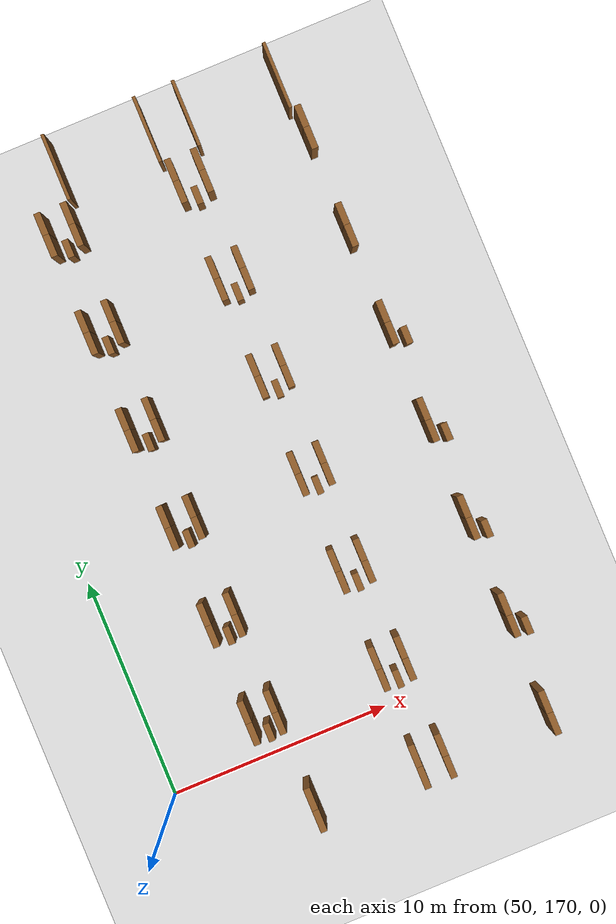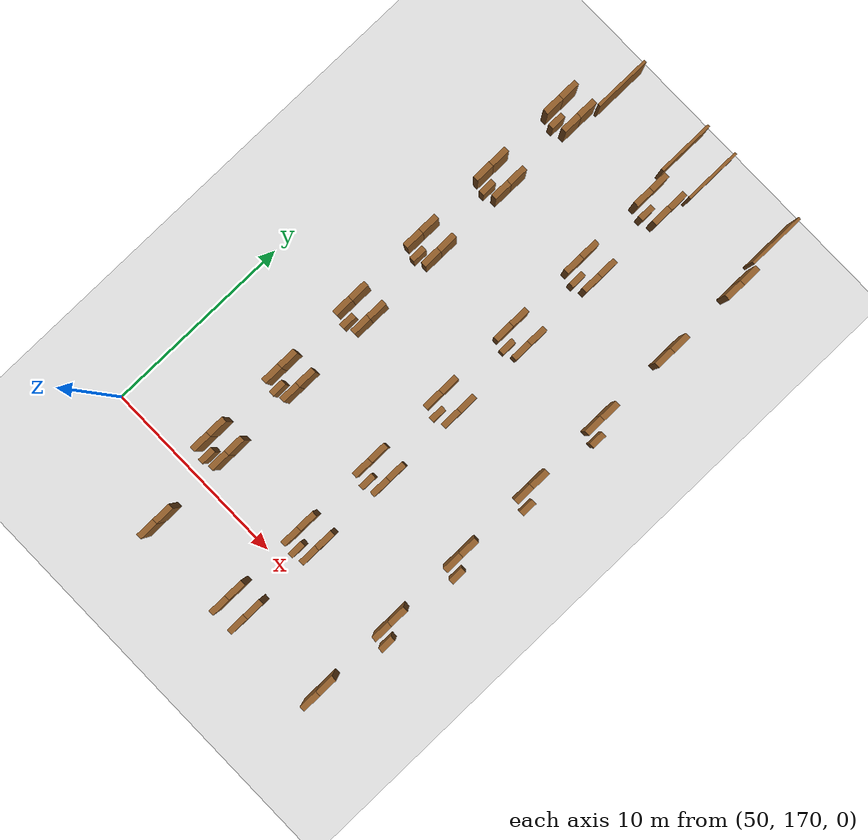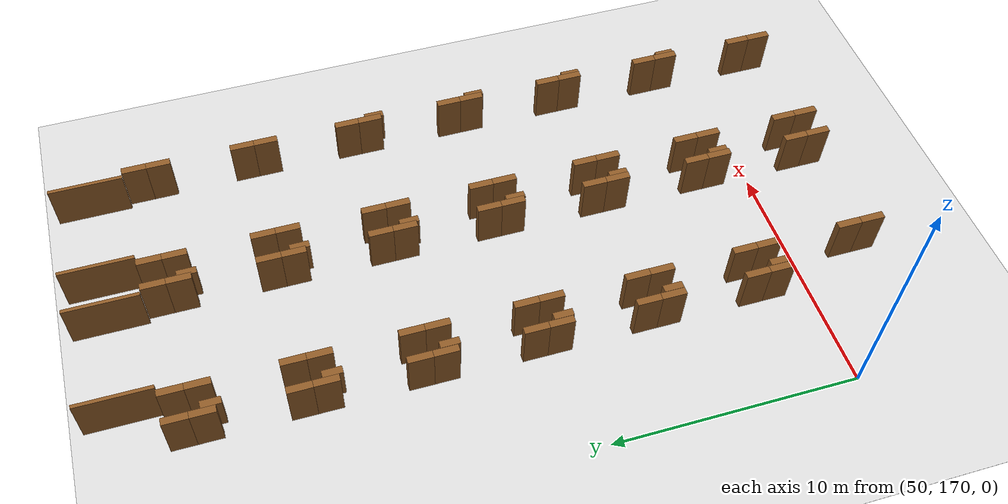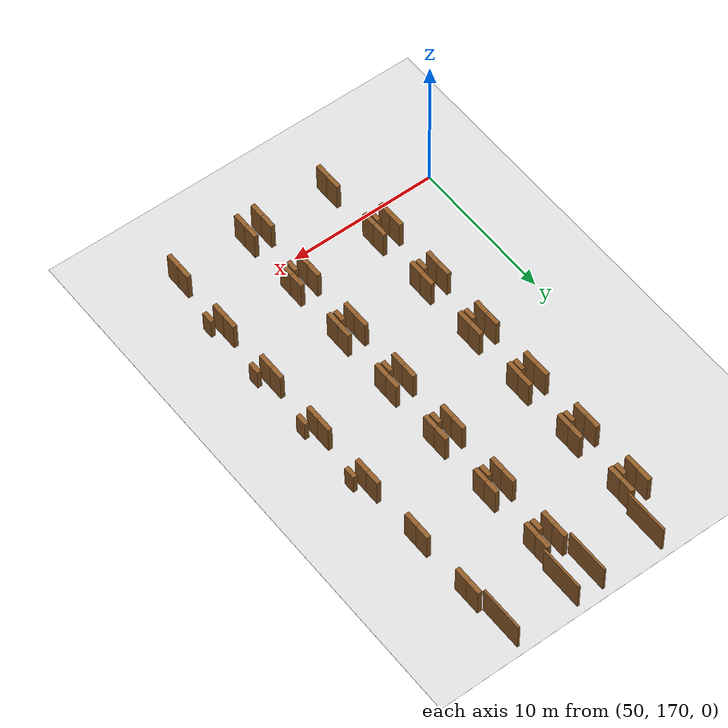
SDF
<sdf version="1.9">
 <world name="realistic_warehouse_150x200m">
  <model name="ground_plane">
   <static>true</static>
   <pose>68.5 102.0 0 0 0 0</pose>
   <link name="ground_link">
    <visual name="ground_visual">
     <geometry><box><size>127.0 194.0 0.01</size></box></geometry>
     <material><ambient>0.85 0.85 0.85 1.0</ambient><diffuse>0.85 0.85 0.85 1.0</diffuse></material>
    </visual>
    <collision name="ground_visual_collision">
     <geometry><box><size>127.0 194.0 0.01</size></box></geometry>
    </collision>
    <collision name="ground_collision">
     <geometry><plane><normal>0 0 1</normal><size>127.0 194.0</size></plane></geometry>
    </collision>
   </link>
  </model>
  <model name="rack_Zone_B_A0_S1_240">
   <static>true</static>
   <pose>55.6 167.0 1.0 0 0 0</pose>
   <link name="rack_Zone_B_A0_S1_240_link">
    <visual name="rack_Zone_B_A0_S1_240_vis">
     <geometry><box><size>0.3 1.0 2.0</size></box></geometry>
     <material><ambient>0.55 0.35 0.15 1.0</ambient><diffuse>0.55 0.35 0.15 1.0</diffuse></material>
    </visual>
    <collision name="rack_Zone_B_A0_S1_240_vis_collision">
     <geometry><box><size>0.3 1.0 2.0</size></box></geometry>
    </collision>
   </link>
  </model>
  <model name="rack_Zone_B_A0_S1_241">
   <static>true</static>
   <pose>55.6 168.0 1.0 0 0 0</pose>
   <link name="rack_Zone_B_A0_S1_241_link">
    <visual name="rack_Zone_B_A0_S1_241_vis">
     <geometry><box><size>0.3 1.0 2.0</size></box></geometry>
     <material><ambient>0.55 0.35 0.15 1.0</ambient><diffuse>0.55 0.35 0.15 1.0</diffuse></material>
    </visual>
    <collision name="rack_Zone_B_A0_S1_241_vis_collision">
     <geometry><box><size>0.3 1.0 2.0</size></box></geometry>
    </collision>
   </link>
  </model>
  <model name="rack_Zone_B_A0_S2_243">
   <static>true</static>
   <pose>54.4 171.5 1.0 0 0 0</pose>
   <link name="rack_Zone_B_A0_S2_243_link">
    <visual name="rack_Zone_B_A0_S2_243_vis">
     <geometry><box><size>0.3 1.0 2.0</size></box></geometry>
     <material><ambient>0.55 0.35 0.15 1.0</ambient><diffuse>0.55 0.35 0.15 1.0</diffuse></material>
    </visual>
    <collision name="rack_Zone_B_A0_S2_243_vis_collision">
     <geometry><box><size>0.3 1.0 2.0</size></box></geometry>
    </collision>
   </link>
  </model>
  <model name="rack_Zone_B_A0_S2_244">
   <static>true</static>
   <pose>54.4 172.5 1.0 0 0 0</pose>
   <link name="rack_Zone_B_A0_S2_244_link">
    <visual name="rack_Zone_B_A0_S2_244_vis">
     <geometry><box><size>0.3 1.0 2.0</size></box></geometry>
     <material><ambient>0.55 0.35 0.15 1.0</ambient><diffuse>0.55 0.35 0.15 1.0</diffuse></material>
    </visual>
    <collision name="rack_Zone_B_A0_S2_244_vis_collision">
     <geometry><box><size>0.3 1.0 2.0</size></box></geometry>
    </collision>
   </link>
  </model>
  <model name="rack_Zone_B_A0_S2_245">
   <static>true</static>
   <pose>55.6 171.5 1.0 0 0 0</pose>
   <link name="rack_Zone_B_A0_S2_245_link">
    <visual name="rack_Zone_B_A0_S2_245_vis">
     <geometry><box><size>0.3 1.0 2.0</size></box></geometry>
     <material><ambient>0.55 0.35 0.15 1.0</ambient><diffuse>0.55 0.35 0.15 1.0</diffuse></material>
    </visual>
    <collision name="rack_Zone_B_A0_S2_245_vis_collision">
     <geometry><box><size>0.3 1.0 2.0</size></box></geometry>
    </collision>
   </link>
  </model>
  <model name="rack_Zone_B_A0_S2_246">
   <static>true</static>
   <pose>55.6 172.5 1.0 0 0 0</pose>
   <link name="rack_Zone_B_A0_S2_246_link">
    <visual name="rack_Zone_B_A0_S2_246_vis">
     <geometry><box><size>0.3 1.0 2.0</size></box></geometry>
     <material><ambient>0.55 0.35 0.15 1.0</ambient><diffuse>0.55 0.35 0.15 1.0</diffuse></material>
    </visual>
    <collision name="rack_Zone_B_A0_S2_246_vis_collision">
     <geometry><box><size>0.3 1.0 2.0</size></box></geometry>
    </collision>
   </link>
  </model>
  <model name="rack_Zone_B_A0_S2_247">
   <static>true</static>
   <pose>55.0 171.2 0.75 0 0 0</pose>
   <link name="rack_Zone_B_A0_S2_247_link">
    <visual name="rack_Zone_B_A0_S2_247_vis">
     <geometry><box><size>0.3 0.8 1.5</size></box></geometry>
     <material><ambient>0.55 0.35 0.15 1.0</ambient><diffuse>0.55 0.35 0.15 1.0</diffuse></material>
    </visual>
    <collision name="rack_Zone_B_A0_S2_247_vis_collision">
     <geometry><box><size>0.3 0.8 1.5</size></box></geometry>
    </collision>
   </link>
  </model>
  <model name="rack_Zone_B_A0_S3_248">
   <static>true</static>
   <pose>54.4 176.0 1.0 0 0 0</pose>
   <link name="rack_Zone_B_A0_S3_248_link">
    <visual name="rack_Zone_B_A0_S3_248_vis">
     <geometry><box><size>0.3 1.0 2.0</size></box></geometry>
     <material><ambient>0.55 0.35 0.15 1.0</ambient><diffuse>0.55 0.35 0.15 1.0</diffuse></material>
    </visual>
    <collision name="rack_Zone_B_A0_S3_248_vis_collision">
     <geometry><box><size>0.3 1.0 2.0</size></box></geometry>
    </collision>
   </link>
  </model>
  <model name="rack_Zone_B_A0_S3_249">
   <static>true</static>
   <pose>54.4 177.0 1.0 0 0 0</pose>
   <link name="rack_Zone_B_A0_S3_249_link">
    <visual name="rack_Zone_B_A0_S3_249_vis">
     <geometry><box><size>0.3 1.0 2.0</size></box></geometry>
     <material><ambient>0.55 0.35 0.15 1.0</ambient><diffuse>0.55 0.35 0.15 1.0</diffuse></material>
    </visual>
    <collision name="rack_Zone_B_A0_S3_249_vis_collision">
     <geometry><box><size>0.3 1.0 2.0</size></box></geometry>
    </collision>
   </link>
  </model>
  <model name="rack_Zone_B_A0_S3_250">
   <static>true</static>
   <pose>55.6 176.0 1.0 0 0 0</pose>
   <link name="rack_Zone_B_A0_S3_250_link">
    <visual name="rack_Zone_B_A0_S3_250_vis">
     <geometry><box><size>0.3 1.0 2.0</size></box></geometry>
     <material><ambient>0.55 0.35 0.15 1.0</ambient><diffuse>0.55 0.35 0.15 1.0</diffuse></material>
    </visual>
    <collision name="rack_Zone_B_A0_S3_250_vis_collision">
     <geometry><box><size>0.3 1.0 2.0</size></box></geometry>
    </collision>
   </link>
  </model>
  <model name="rack_Zone_B_A0_S3_251">
   <static>true</static>
   <pose>55.6 177.0 1.0 0 0 0</pose>
   <link name="rack_Zone_B_A0_S3_251_link">
    <visual name="rack_Zone_B_A0_S3_251_vis">
     <geometry><box><size>0.3 1.0 2.0</size></box></geometry>
     <material><ambient>0.55 0.35 0.15 1.0</ambient><diffuse>0.55 0.35 0.15 1.0</diffuse></material>
    </visual>
    <collision name="rack_Zone_B_A0_S3_251_vis_collision">
     <geometry><box><size>0.3 1.0 2.0</size></box></geometry>
    </collision>
   </link>
  </model>
  <model name="rack_Zone_B_A0_S3_252">
   <static>true</static>
   <pose>55.0 175.7 0.75 0 0 0</pose>
   <link name="rack_Zone_B_A0_S3_252_link">
    <visual name="rack_Zone_B_A0_S3_252_vis">
     <geometry><box><size>0.3 0.8 1.5</size></box></geometry>
     <material><ambient>0.55 0.35 0.15 1.0</ambient><diffuse>0.55 0.35 0.15 1.0</diffuse></material>
    </visual>
    <collision name="rack_Zone_B_A0_S3_252_vis_collision">
     <geometry><box><size>0.3 0.8 1.5</size></box></geometry>
    </collision>
   </link>
  </model>
  <model name="rack_Zone_B_A0_S4_253">
   <static>true</static>
   <pose>54.4 180.5 1.0 0 0 0</pose>
   <link name="rack_Zone_B_A0_S4_253_link">
    <visual name="rack_Zone_B_A0_S4_253_vis">
     <geometry><box><size>0.3 1.0 2.0</size></box></geometry>
     <material><ambient>0.55 0.35 0.15 1.0</ambient><diffuse>0.55 0.35 0.15 1.0</diffuse></material>
    </visual>
    <collision name="rack_Zone_B_A0_S4_253_vis_collision">
     <geometry><box><size>0.3 1.0 2.0</size></box></geometry>
    </collision>
   </link>
  </model>
  <model name="rack_Zone_B_A0_S4_254">
   <static>true</static>
   <pose>54.4 181.5 1.0 0 0 0</pose>
   <link name="rack_Zone_B_A0_S4_254_link">
    <visual name="rack_Zone_B_A0_S4_254_vis">
     <geometry><box><size>0.3 1.0 2.0</size></box></geometry>
     <material><ambient>0.55 0.35 0.15 1.0</ambient><diffuse>0.55 0.35 0.15 1.0</diffuse></material>
    </visual>
    <collision name="rack_Zone_B_A0_S4_254_vis_collision">
     <geometry><box><size>0.3 1.0 2.0</size></box></geometry>
    </collision>
   </link>
  </model>
  <model name="rack_Zone_B_A0_S4_255">
   <static>true</static>
   <pose>55.6 180.5 1.0 0 0 0</pose>
   <link name="rack_Zone_B_A0_S4_255_link">
    <visual name="rack_Zone_B_A0_S4_255_vis">
     <geometry><box><size>0.3 1.0 2.0</size></box></geometry>
     <material><ambient>0.55 0.35 0.15 1.0</ambient><diffuse>0.55 0.35 0.15 1.0</diffuse></material>
    </visual>
    <collision name="rack_Zone_B_A0_S4_255_vis_collision">
     <geometry><box><size>0.3 1.0 2.0</size></box></geometry>
    </collision>
   </link>
  </model>
  <model name="rack_Zone_B_A0_S4_256">
   <static>true</static>
   <pose>55.6 181.5 1.0 0 0 0</pose>
   <link name="rack_Zone_B_A0_S4_256_link">
    <visual name="rack_Zone_B_A0_S4_256_vis">
     <geometry><box><size>0.3 1.0 2.0</size></box></geometry>
     <material><ambient>0.55 0.35 0.15 1.0</ambient><diffuse>0.55 0.35 0.15 1.0</diffuse></material>
    </visual>
    <collision name="rack_Zone_B_A0_S4_256_vis_collision">
     <geometry><box><size>0.3 1.0 2.0</size></box></geometry>
    </collision>
   </link>
  </model>
  <model name="rack_Zone_B_A0_S4_257">
   <static>true</static>
   <pose>55.0 180.2 0.75 0 0 0</pose>
   <link name="rack_Zone_B_A0_S4_257_link">
    <visual name="rack_Zone_B_A0_S4_257_vis">
     <geometry><box><size>0.3 0.8 1.5</size></box></geometry>
     <material><ambient>0.55 0.35 0.15 1.0</ambient><diffuse>0.55 0.35 0.15 1.0</diffuse></material>
    </visual>
    <collision name="rack_Zone_B_A0_S4_257_vis_collision">
     <geometry><box><size>0.3 0.8 1.5</size></box></geometry>
    </collision>
   </link>
  </model>
  <model name="rack_Zone_B_A0_S5_258">
   <static>true</static>
   <pose>54.4 185.0 1.0 0 0 0</pose>
   <link name="rack_Zone_B_A0_S5_258_link">
    <visual name="rack_Zone_B_A0_S5_258_vis">
     <geometry><box><size>0.3 1.0 2.0</size></box></geometry>
     <material><ambient>0.55 0.35 0.15 1.0</ambient><diffuse>0.55 0.35 0.15 1.0</diffuse></material>
    </visual>
    <collision name="rack_Zone_B_A0_S5_258_vis_collision">
     <geometry><box><size>0.3 1.0 2.0</size></box></geometry>
    </collision>
   </link>
  </model>
  <model name="rack_Zone_B_A0_S5_259">
   <static>true</static>
   <pose>54.4 186.0 1.0 0 0 0</pose>
   <link name="rack_Zone_B_A0_S5_259_link">
    <visual name="rack_Zone_B_A0_S5_259_vis">
     <geometry><box><size>0.3 1.0 2.0</size></box></geometry>
     <material><ambient>0.55 0.35 0.15 1.0</ambient><diffuse>0.55 0.35 0.15 1.0</diffuse></material>
    </visual>
    <collision name="rack_Zone_B_A0_S5_259_vis_collision">
     <geometry><box><size>0.3 1.0 2.0</size></box></geometry>
    </collision>
   </link>
  </model>
  <model name="rack_Zone_B_A0_S5_260">
   <static>true</static>
   <pose>55.6 185.0 1.0 0 0 0</pose>
   <link name="rack_Zone_B_A0_S5_260_link">
    <visual name="rack_Zone_B_A0_S5_260_vis">
     <geometry><box><size>0.3 1.0 2.0</size></box></geometry>
     <material><ambient>0.55 0.35 0.15 1.0</ambient><diffuse>0.55 0.35 0.15 1.0</diffuse></material>
    </visual>
    <collision name="rack_Zone_B_A0_S5_260_vis_collision">
     <geometry><box><size>0.3 1.0 2.0</size></box></geometry>
    </collision>
   </link>
  </model>
  <model name="rack_Zone_B_A0_S5_261">
   <static>true</static>
   <pose>55.6 186.0 1.0 0 0 0</pose>
   <link name="rack_Zone_B_A0_S5_261_link">
    <visual name="rack_Zone_B_A0_S5_261_vis">
     <geometry><box><size>0.3 1.0 2.0</size></box></geometry>
     <material><ambient>0.55 0.35 0.15 1.0</ambient><diffuse>0.55 0.35 0.15 1.0</diffuse></material>
    </visual>
    <collision name="rack_Zone_B_A0_S5_261_vis_collision">
     <geometry><box><size>0.3 1.0 2.0</size></box></geometry>
    </collision>
   </link>
  </model>
  <model name="rack_Zone_B_A0_S5_262">
   <static>true</static>
   <pose>55.0 184.7 0.75 0 0 0</pose>
   <link name="rack_Zone_B_A0_S5_262_link">
    <visual name="rack_Zone_B_A0_S5_262_vis">
     <geometry><box><size>0.3 0.8 1.5</size></box></geometry>
     <material><ambient>0.55 0.35 0.15 1.0</ambient><diffuse>0.55 0.35 0.15 1.0</diffuse></material>
    </visual>
    <collision name="rack_Zone_B_A0_S5_262_vis_collision">
     <geometry><box><size>0.3 0.8 1.5</size></box></geometry>
    </collision>
   </link>
  </model>
  <model name="rack_Zone_B_A0_S6_263">
   <static>true</static>
   <pose>54.4 189.5 1.0 0 0 0</pose>
   <link name="rack_Zone_B_A0_S6_263_link">
    <visual name="rack_Zone_B_A0_S6_263_vis">
     <geometry><box><size>0.3 1.0 2.0</size></box></geometry>
     <material><ambient>0.55 0.35 0.15 1.0</ambient><diffuse>0.55 0.35 0.15 1.0</diffuse></material>
    </visual>
    <collision name="rack_Zone_B_A0_S6_263_vis_collision">
     <geometry><box><size>0.3 1.0 2.0</size></box></geometry>
    </collision>
   </link>
  </model>
  <model name="rack_Zone_B_A0_S6_264">
   <static>true</static>
   <pose>54.4 190.5 1.0 0 0 0</pose>
   <link name="rack_Zone_B_A0_S6_264_link">
    <visual name="rack_Zone_B_A0_S6_264_vis">
     <geometry><box><size>0.3 1.0 2.0</size></box></geometry>
     <material><ambient>0.55 0.35 0.15 1.0</ambient><diffuse>0.55 0.35 0.15 1.0</diffuse></material>
    </visual>
    <collision name="rack_Zone_B_A0_S6_264_vis_collision">
     <geometry><box><size>0.3 1.0 2.0</size></box></geometry>
    </collision>
   </link>
  </model>
  <model name="rack_Zone_B_A0_S6_265">
   <static>true</static>
   <pose>55.6 189.5 1.0 0 0 0</pose>
   <link name="rack_Zone_B_A0_S6_265_link">
    <visual name="rack_Zone_B_A0_S6_265_vis">
     <geometry><box><size>0.3 1.0 2.0</size></box></geometry>
     <material><ambient>0.55 0.35 0.15 1.0</ambient><diffuse>0.55 0.35 0.15 1.0</diffuse></material>
    </visual>
    <collision name="rack_Zone_B_A0_S6_265_vis_collision">
     <geometry><box><size>0.3 1.0 2.0</size></box></geometry>
    </collision>
   </link>
  </model>
  <model name="rack_Zone_B_A0_S6_266">
   <static>true</static>
   <pose>55.6 190.5 1.0 0 0 0</pose>
   <link name="rack_Zone_B_A0_S6_266_link">
    <visual name="rack_Zone_B_A0_S6_266_vis">
     <geometry><box><size>0.3 1.0 2.0</size></box></geometry>
     <material><ambient>0.55 0.35 0.15 1.0</ambient><diffuse>0.55 0.35 0.15 1.0</diffuse></material>
    </visual>
    <collision name="rack_Zone_B_A0_S6_266_vis_collision">
     <geometry><box><size>0.3 1.0 2.0</size></box></geometry>
    </collision>
   </link>
  </model>
  <model name="rack_Zone_B_A0_S6_267">
   <static>true</static>
   <pose>55.0 189.2 0.75 0 0 0</pose>
   <link name="rack_Zone_B_A0_S6_267_link">
    <visual name="rack_Zone_B_A0_S6_267_vis">
     <geometry><box><size>0.3 0.8 1.5</size></box></geometry>
     <material><ambient>0.55 0.35 0.15 1.0</ambient><diffuse>0.55 0.35 0.15 1.0</diffuse></material>
    </visual>
    <collision name="rack_Zone_B_A0_S6_267_vis_collision">
     <geometry><box><size>0.3 0.8 1.5</size></box></geometry>
    </collision>
   </link>
  </model>
  <model name="rack_Zone_B_A0_S7_268">
   <static>true</static>
   <pose>54.4 194.0 1.0 0 0 0</pose>
   <link name="rack_Zone_B_A0_S7_268_link">
    <visual name="rack_Zone_B_A0_S7_268_vis">
     <geometry><box><size>0.3 1.0 2.0</size></box></geometry>
     <material><ambient>0.55 0.35 0.15 1.0</ambient><diffuse>0.55 0.35 0.15 1.0</diffuse></material>
    </visual>
    <collision name="rack_Zone_B_A0_S7_268_vis_collision">
     <geometry><box><size>0.3 1.0 2.0</size></box></geometry>
    </collision>
   </link>
  </model>
  <model name="rack_Zone_B_A0_S7_269">
   <static>true</static>
   <pose>54.4 195.0 1.0 0 0 0</pose>
   <link name="rack_Zone_B_A0_S7_269_link">
    <visual name="rack_Zone_B_A0_S7_269_vis">
     <geometry><box><size>0.3 1.0 2.0</size></box></geometry>
     <material><ambient>0.55 0.35 0.15 1.0</ambient><diffuse>0.55 0.35 0.15 1.0</diffuse></material>
    </visual>
    <collision name="rack_Zone_B_A0_S7_269_vis_collision">
     <geometry><box><size>0.3 1.0 2.0</size></box></geometry>
    </collision>
   </link>
  </model>
  <model name="rack_Zone_B_A0_S7_270">
   <static>true</static>
   <pose>55.6 194.0 1.0 0 0 0</pose>
   <link name="rack_Zone_B_A0_S7_270_link">
    <visual name="rack_Zone_B_A0_S7_270_vis">
     <geometry><box><size>0.3 1.0 2.0</size></box></geometry>
     <material><ambient>0.55 0.35 0.15 1.0</ambient><diffuse>0.55 0.35 0.15 1.0</diffuse></material>
    </visual>
    <collision name="rack_Zone_B_A0_S7_270_vis_collision">
     <geometry><box><size>0.3 1.0 2.0</size></box></geometry>
    </collision>
   </link>
  </model>
  <model name="rack_Zone_B_A0_S7_271">
   <static>true</static>
   <pose>55.6 195.0 1.0 0 0 0</pose>
   <link name="rack_Zone_B_A0_S7_271_link">
    <visual name="rack_Zone_B_A0_S7_271_vis">
     <geometry><box><size>0.3 1.0 2.0</size></box></geometry>
     <material><ambient>0.55 0.35 0.15 1.0</ambient><diffuse>0.55 0.35 0.15 1.0</diffuse></material>
    </visual>
    <collision name="rack_Zone_B_A0_S7_271_vis_collision">
     <geometry><box><size>0.3 1.0 2.0</size></box></geometry>
    </collision>
   </link>
  </model>
  <model name="rack_Zone_B_A0_S7_272">
   <static>true</static>
   <pose>55.0 193.7 0.75 0 0 0</pose>
   <link name="rack_Zone_B_A0_S7_272_link">
    <visual name="rack_Zone_B_A0_S7_272_vis">
     <geometry><box><size>0.3 0.8 1.5</size></box></geometry>
     <material><ambient>0.55 0.35 0.15 1.0</ambient><diffuse>0.55 0.35 0.15 1.0</diffuse></material>
    </visual>
    <collision name="rack_Zone_B_A0_S7_272_vis_collision">
     <geometry><box><size>0.3 0.8 1.5</size></box></geometry>
    </collision>
   </link>
  </model>
  <model name="aisle_R_Zone_B_A0_exit_274">
   <static>true</static>
   <pose>55.9 197.0 1.0 0 0 0</pose>
   <link name="aisle_R_Zone_B_A0_exit_274_link">
    <visual name="aisle_R_Zone_B_A0_exit_274_vis">
     <geometry><box><size>0.15 3.0 2.0</size></box></geometry>
     <material><ambient>0.55 0.35 0.15 1.0</ambient><diffuse>0.55 0.35 0.15 1.0</diffuse></material>
    </visual>
    <collision name="aisle_R_Zone_B_A0_exit_274_vis_collision">
     <geometry><box><size>0.15 3.0 2.0</size></box></geometry>
    </collision>
   </link>
  </model>
  <model name="rack_Zone_B_A1_S1_282">
   <static>true</static>
   <pose>60.4 167.0 1.0 0 0 0</pose>
   <link name="rack_Zone_B_A1_S1_282_link">
    <visual name="rack_Zone_B_A1_S1_282_vis">
     <geometry><box><size>0.3 1.0 2.0</size></box></geometry>
     <material><ambient>0.55 0.35 0.15 1.0</ambient><diffuse>0.55 0.35 0.15 1.0</diffuse></material>
    </visual>
    <collision name="rack_Zone_B_A1_S1_282_vis_collision">
     <geometry><box><size>0.3 1.0 2.0</size></box></geometry>
    </collision>
   </link>
  </model>
  <model name="rack_Zone_B_A1_S1_283">
   <static>true</static>
   <pose>60.4 168.0 1.0 0 0 0</pose>
   <link name="rack_Zone_B_A1_S1_283_link">
    <visual name="rack_Zone_B_A1_S1_283_vis">
     <geometry><box><size>0.3 1.0 2.0</size></box></geometry>
     <material><ambient>0.55 0.35 0.15 1.0</ambient><diffuse>0.55 0.35 0.15 1.0</diffuse></material>
    </visual>
    <collision name="rack_Zone_B_A1_S1_283_vis_collision">
     <geometry><box><size>0.3 1.0 2.0</size></box></geometry>
    </collision>
   </link>
  </model>
  <model name="rack_Zone_B_A1_S1_284">
   <static>true</static>
   <pose>61.6 167.0 1.0 0 0 0</pose>
   <link name="rack_Zone_B_A1_S1_284_link">
    <visual name="rack_Zone_B_A1_S1_284_vis">
     <geometry><box><size>0.3 1.0 2.0</size></box></geometry>
     <material><ambient>0.55 0.35 0.15 1.0</ambient><diffuse>0.55 0.35 0.15 1.0</diffuse></material>
    </visual>
    <collision name="rack_Zone_B_A1_S1_284_vis_collision">
     <geometry><box><size>0.3 1.0 2.0</size></box></geometry>
    </collision>
   </link>
  </model>
  <model name="rack_Zone_B_A1_S1_285">
   <static>true</static>
   <pose>61.6 168.0 1.0 0 0 0</pose>
   <link name="rack_Zone_B_A1_S1_285_link">
    <visual name="rack_Zone_B_A1_S1_285_vis">
     <geometry><box><size>0.3 1.0 2.0</size></box></geometry>
     <material><ambient>0.55 0.35 0.15 1.0</ambient><diffuse>0.55 0.35 0.15 1.0</diffuse></material>
    </visual>
    <collision name="rack_Zone_B_A1_S1_285_vis_collision">
     <geometry><box><size>0.3 1.0 2.0</size></box></geometry>
    </collision>
   </link>
  </model>
  <model name="rack_Zone_B_A1_S2_287">
   <static>true</static>
   <pose>60.4 171.5 1.0 0 0 0</pose>
   <link name="rack_Zone_B_A1_S2_287_link">
    <visual name="rack_Zone_B_A1_S2_287_vis">
     <geometry><box><size>0.3 1.0 2.0</size></box></geometry>
     <material><ambient>0.55 0.35 0.15 1.0</ambient><diffuse>0.55 0.35 0.15 1.0</diffuse></material>
    </visual>
    <collision name="rack_Zone_B_A1_S2_287_vis_collision">
     <geometry><box><size>0.3 1.0 2.0</size></box></geometry>
    </collision>
   </link>
  </model>
  <model name="rack_Zone_B_A1_S2_288">
   <static>true</static>
   <pose>60.4 172.5 1.0 0 0 0</pose>
   <link name="rack_Zone_B_A1_S2_288_link">
    <visual name="rack_Zone_B_A1_S2_288_vis">
     <geometry><box><size>0.3 1.0 2.0</size></box></geometry>
     <material><ambient>0.55 0.35 0.15 1.0</ambient><diffuse>0.55 0.35 0.15 1.0</diffuse></material>
    </visual>
    <collision name="rack_Zone_B_A1_S2_288_vis_collision">
     <geometry><box><size>0.3 1.0 2.0</size></box></geometry>
    </collision>
   </link>
  </model>
  <model name="rack_Zone_B_A1_S2_289">
   <static>true</static>
   <pose>61.6 171.5 1.0 0 0 0</pose>
   <link name="rack_Zone_B_A1_S2_289_link">
    <visual name="rack_Zone_B_A1_S2_289_vis">
     <geometry><box><size>0.3 1.0 2.0</size></box></geometry>
     <material><ambient>0.55 0.35 0.15 1.0</ambient><diffuse>0.55 0.35 0.15 1.0</diffuse></material>
    </visual>
    <collision name="rack_Zone_B_A1_S2_289_vis_collision">
     <geometry><box><size>0.3 1.0 2.0</size></box></geometry>
    </collision>
   </link>
  </model>
  <model name="rack_Zone_B_A1_S2_290">
   <static>true</static>
   <pose>61.6 172.5 1.0 0 0 0</pose>
   <link name="rack_Zone_B_A1_S2_290_link">
    <visual name="rack_Zone_B_A1_S2_290_vis">
     <geometry><box><size>0.3 1.0 2.0</size></box></geometry>
     <material><ambient>0.55 0.35 0.15 1.0</ambient><diffuse>0.55 0.35 0.15 1.0</diffuse></material>
    </visual>
    <collision name="rack_Zone_B_A1_S2_290_vis_collision">
     <geometry><box><size>0.3 1.0 2.0</size></box></geometry>
    </collision>
   </link>
  </model>
  <model name="rack_Zone_B_A1_S2_291">
   <static>true</static>
   <pose>61.0 171.2 0.75 0 0 0</pose>
   <link name="rack_Zone_B_A1_S2_291_link">
    <visual name="rack_Zone_B_A1_S2_291_vis">
     <geometry><box><size>0.3 0.8 1.5</size></box></geometry>
     <material><ambient>0.55 0.35 0.15 1.0</ambient><diffuse>0.55 0.35 0.15 1.0</diffuse></material>
    </visual>
    <collision name="rack_Zone_B_A1_S2_291_vis_collision">
     <geometry><box><size>0.3 0.8 1.5</size></box></geometry>
    </collision>
   </link>
  </model>
  <model name="rack_Zone_B_A1_S3_292">
   <static>true</static>
   <pose>60.4 176.0 1.0 0 0 0</pose>
   <link name="rack_Zone_B_A1_S3_292_link">
    <visual name="rack_Zone_B_A1_S3_292_vis">
     <geometry><box><size>0.3 1.0 2.0</size></box></geometry>
     <material><ambient>0.55 0.35 0.15 1.0</ambient><diffuse>0.55 0.35 0.15 1.0</diffuse></material>
    </visual>
    <collision name="rack_Zone_B_A1_S3_292_vis_collision">
     <geometry><box><size>0.3 1.0 2.0</size></box></geometry>
    </collision>
   </link>
  </model>
  <model name="rack_Zone_B_A1_S3_293">
   <static>true</static>
   <pose>60.4 177.0 1.0 0 0 0</pose>
   <link name="rack_Zone_B_A1_S3_293_link">
    <visual name="rack_Zone_B_A1_S3_293_vis">
     <geometry><box><size>0.3 1.0 2.0</size></box></geometry>
     <material><ambient>0.55 0.35 0.15 1.0</ambient><diffuse>0.55 0.35 0.15 1.0</diffuse></material>
    </visual>
    <collision name="rack_Zone_B_A1_S3_293_vis_collision">
     <geometry><box><size>0.3 1.0 2.0</size></box></geometry>
    </collision>
   </link>
  </model>
  <model name="rack_Zone_B_A1_S3_294">
   <static>true</static>
   <pose>61.6 176.0 1.0 0 0 0</pose>
   <link name="rack_Zone_B_A1_S3_294_link">
    <visual name="rack_Zone_B_A1_S3_294_vis">
     <geometry><box><size>0.3 1.0 2.0</size></box></geometry>
     <material><ambient>0.55 0.35 0.15 1.0</ambient><diffuse>0.55 0.35 0.15 1.0</diffuse></material>
    </visual>
    <collision name="rack_Zone_B_A1_S3_294_vis_collision">
     <geometry><box><size>0.3 1.0 2.0</size></box></geometry>
    </collision>
   </link>
  </model>
  <model name="rack_Zone_B_A1_S3_295">
   <static>true</static>
   <pose>61.6 177.0 1.0 0 0 0</pose>
   <link name="rack_Zone_B_A1_S3_295_link">
    <visual name="rack_Zone_B_A1_S3_295_vis">
     <geometry><box><size>0.3 1.0 2.0</size></box></geometry>
     <material><ambient>0.55 0.35 0.15 1.0</ambient><diffuse>0.55 0.35 0.15 1.0</diffuse></material>
    </visual>
    <collision name="rack_Zone_B_A1_S3_295_vis_collision">
     <geometry><box><size>0.3 1.0 2.0</size></box></geometry>
    </collision>
   </link>
  </model>
  <model name="rack_Zone_B_A1_S3_296">
   <static>true</static>
   <pose>61.0 175.7 0.75 0 0 0</pose>
   <link name="rack_Zone_B_A1_S3_296_link">
    <visual name="rack_Zone_B_A1_S3_296_vis">
     <geometry><box><size>0.3 0.8 1.5</size></box></geometry>
     <material><ambient>0.55 0.35 0.15 1.0</ambient><diffuse>0.55 0.35 0.15 1.0</diffuse></material>
    </visual>
    <collision name="rack_Zone_B_A1_S3_296_vis_collision">
     <geometry><box><size>0.3 0.8 1.5</size></box></geometry>
    </collision>
   </link>
  </model>
  <model name="rack_Zone_B_A1_S4_297">
   <static>true</static>
   <pose>60.4 180.5 1.0 0 0 0</pose>
   <link name="rack_Zone_B_A1_S4_297_link">
    <visual name="rack_Zone_B_A1_S4_297_vis">
     <geometry><box><size>0.3 1.0 2.0</size></box></geometry>
     <material><ambient>0.55 0.35 0.15 1.0</ambient><diffuse>0.55 0.35 0.15 1.0</diffuse></material>
    </visual>
    <collision name="rack_Zone_B_A1_S4_297_vis_collision">
     <geometry><box><size>0.3 1.0 2.0</size></box></geometry>
    </collision>
   </link>
  </model>
  <model name="rack_Zone_B_A1_S4_298">
   <static>true</static>
   <pose>60.4 181.5 1.0 0 0 0</pose>
   <link name="rack_Zone_B_A1_S4_298_link">
    <visual name="rack_Zone_B_A1_S4_298_vis">
     <geometry><box><size>0.3 1.0 2.0</size></box></geometry>
     <material><ambient>0.55 0.35 0.15 1.0</ambient><diffuse>0.55 0.35 0.15 1.0</diffuse></material>
    </visual>
    <collision name="rack_Zone_B_A1_S4_298_vis_collision">
     <geometry><box><size>0.3 1.0 2.0</size></box></geometry>
    </collision>
   </link>
  </model>
  <model name="rack_Zone_B_A1_S4_299">
   <static>true</static>
   <pose>61.6 180.5 1.0 0 0 0</pose>
   <link name="rack_Zone_B_A1_S4_299_link">
    <visual name="rack_Zone_B_A1_S4_299_vis">
     <geometry><box><size>0.3 1.0 2.0</size></box></geometry>
     <material><ambient>0.55 0.35 0.15 1.0</ambient><diffuse>0.55 0.35 0.15 1.0</diffuse></material>
    </visual>
    <collision name="rack_Zone_B_A1_S4_299_vis_collision">
     <geometry><box><size>0.3 1.0 2.0</size></box></geometry>
    </collision>
   </link>
  </model>
  <model name="rack_Zone_B_A1_S4_300">
   <static>true</static>
   <pose>61.6 181.5 1.0 0 0 0</pose>
   <link name="rack_Zone_B_A1_S4_300_link">
    <visual name="rack_Zone_B_A1_S4_300_vis">
     <geometry><box><size>0.3 1.0 2.0</size></box></geometry>
     <material><ambient>0.55 0.35 0.15 1.0</ambient><diffuse>0.55 0.35 0.15 1.0</diffuse></material>
    </visual>
    <collision name="rack_Zone_B_A1_S4_300_vis_collision">
     <geometry><box><size>0.3 1.0 2.0</size></box></geometry>
    </collision>
   </link>
  </model>
  <model name="rack_Zone_B_A1_S4_301">
   <static>true</static>
   <pose>61.0 180.2 0.75 0 0 0</pose>
   <link name="rack_Zone_B_A1_S4_301_link">
    <visual name="rack_Zone_B_A1_S4_301_vis">
     <geometry><box><size>0.3 0.8 1.5</size></box></geometry>
     <material><ambient>0.55 0.35 0.15 1.0</ambient><diffuse>0.55 0.35 0.15 1.0</diffuse></material>
    </visual>
    <collision name="rack_Zone_B_A1_S4_301_vis_collision">
     <geometry><box><size>0.3 0.8 1.5</size></box></geometry>
    </collision>
   </link>
  </model>
  <model name="rack_Zone_B_A1_S5_302">
   <static>true</static>
   <pose>60.4 185.0 1.0 0 0 0</pose>
   <link name="rack_Zone_B_A1_S5_302_link">
    <visual name="rack_Zone_B_A1_S5_302_vis">
     <geometry><box><size>0.3 1.0 2.0</size></box></geometry>
     <material><ambient>0.55 0.35 0.15 1.0</ambient><diffuse>0.55 0.35 0.15 1.0</diffuse></material>
    </visual>
    <collision name="rack_Zone_B_A1_S5_302_vis_collision">
     <geometry><box><size>0.3 1.0 2.0</size></box></geometry>
    </collision>
   </link>
  </model>
  <model name="rack_Zone_B_A1_S5_303">
   <static>true</static>
   <pose>60.4 186.0 1.0 0 0 0</pose>
   <link name="rack_Zone_B_A1_S5_303_link">
    <visual name="rack_Zone_B_A1_S5_303_vis">
     <geometry><box><size>0.3 1.0 2.0</size></box></geometry>
     <material><ambient>0.55 0.35 0.15 1.0</ambient><diffuse>0.55 0.35 0.15 1.0</diffuse></material>
    </visual>
    <collision name="rack_Zone_B_A1_S5_303_vis_collision">
     <geometry><box><size>0.3 1.0 2.0</size></box></geometry>
    </collision>
   </link>
  </model>
  <model name="rack_Zone_B_A1_S5_304">
   <static>true</static>
   <pose>61.6 185.0 1.0 0 0 0</pose>
   <link name="rack_Zone_B_A1_S5_304_link">
    <visual name="rack_Zone_B_A1_S5_304_vis">
     <geometry><box><size>0.3 1.0 2.0</size></box></geometry>
     <material><ambient>0.55 0.35 0.15 1.0</ambient><diffuse>0.55 0.35 0.15 1.0</diffuse></material>
    </visual>
    <collision name="rack_Zone_B_A1_S5_304_vis_collision">
     <geometry><box><size>0.3 1.0 2.0</size></box></geometry>
    </collision>
   </link>
  </model>
  <model name="rack_Zone_B_A1_S5_305">
   <static>true</static>
   <pose>61.6 186.0 1.0 0 0 0</pose>
   <link name="rack_Zone_B_A1_S5_305_link">
    <visual name="rack_Zone_B_A1_S5_305_vis">
     <geometry><box><size>0.3 1.0 2.0</size></box></geometry>
     <material><ambient>0.55 0.35 0.15 1.0</ambient><diffuse>0.55 0.35 0.15 1.0</diffuse></material>
    </visual>
    <collision name="rack_Zone_B_A1_S5_305_vis_collision">
     <geometry><box><size>0.3 1.0 2.0</size></box></geometry>
    </collision>
   </link>
  </model>
  <model name="rack_Zone_B_A1_S5_306">
   <static>true</static>
   <pose>61.0 184.7 0.75 0 0 0</pose>
   <link name="rack_Zone_B_A1_S5_306_link">
    <visual name="rack_Zone_B_A1_S5_306_vis">
     <geometry><box><size>0.3 0.8 1.5</size></box></geometry>
     <material><ambient>0.55 0.35 0.15 1.0</ambient><diffuse>0.55 0.35 0.15 1.0</diffuse></material>
    </visual>
    <collision name="rack_Zone_B_A1_S5_306_vis_collision">
     <geometry><box><size>0.3 0.8 1.5</size></box></geometry>
    </collision>
   </link>
  </model>
  <model name="rack_Zone_B_A1_S6_307">
   <static>true</static>
   <pose>60.4 189.5 1.0 0 0 0</pose>
   <link name="rack_Zone_B_A1_S6_307_link">
    <visual name="rack_Zone_B_A1_S6_307_vis">
     <geometry><box><size>0.3 1.0 2.0</size></box></geometry>
     <material><ambient>0.55 0.35 0.15 1.0</ambient><diffuse>0.55 0.35 0.15 1.0</diffuse></material>
    </visual>
    <collision name="rack_Zone_B_A1_S6_307_vis_collision">
     <geometry><box><size>0.3 1.0 2.0</size></box></geometry>
    </collision>
   </link>
  </model>
  <model name="rack_Zone_B_A1_S6_308">
   <static>true</static>
   <pose>60.4 190.5 1.0 0 0 0</pose>
   <link name="rack_Zone_B_A1_S6_308_link">
    <visual name="rack_Zone_B_A1_S6_308_vis">
     <geometry><box><size>0.3 1.0 2.0</size></box></geometry>
     <material><ambient>0.55 0.35 0.15 1.0</ambient><diffuse>0.55 0.35 0.15 1.0</diffuse></material>
    </visual>
    <collision name="rack_Zone_B_A1_S6_308_vis_collision">
     <geometry><box><size>0.3 1.0 2.0</size></box></geometry>
    </collision>
   </link>
  </model>
  <model name="rack_Zone_B_A1_S6_309">
   <static>true</static>
   <pose>61.6 189.5 1.0 0 0 0</pose>
   <link name="rack_Zone_B_A1_S6_309_link">
    <visual name="rack_Zone_B_A1_S6_309_vis">
     <geometry><box><size>0.3 1.0 2.0</size></box></geometry>
     <material><ambient>0.55 0.35 0.15 1.0</ambient><diffuse>0.55 0.35 0.15 1.0</diffuse></material>
    </visual>
    <collision name="rack_Zone_B_A1_S6_309_vis_collision">
     <geometry><box><size>0.3 1.0 2.0</size></box></geometry>
    </collision>
   </link>
  </model>
  <model name="rack_Zone_B_A1_S6_310">
   <static>true</static>
   <pose>61.6 190.5 1.0 0 0 0</pose>
   <link name="rack_Zone_B_A1_S6_310_link">
    <visual name="rack_Zone_B_A1_S6_310_vis">
     <geometry><box><size>0.3 1.0 2.0</size></box></geometry>
     <material><ambient>0.55 0.35 0.15 1.0</ambient><diffuse>0.55 0.35 0.15 1.0</diffuse></material>
    </visual>
    <collision name="rack_Zone_B_A1_S6_310_vis_collision">
     <geometry><box><size>0.3 1.0 2.0</size></box></geometry>
    </collision>
   </link>
  </model>
  <model name="rack_Zone_B_A1_S6_311">
   <static>true</static>
   <pose>61.0 189.2 0.75 0 0 0</pose>
   <link name="rack_Zone_B_A1_S6_311_link">
    <visual name="rack_Zone_B_A1_S6_311_vis">
     <geometry><box><size>0.3 0.8 1.5</size></box></geometry>
     <material><ambient>0.55 0.35 0.15 1.0</ambient><diffuse>0.55 0.35 0.15 1.0</diffuse></material>
    </visual>
    <collision name="rack_Zone_B_A1_S6_311_vis_collision">
     <geometry><box><size>0.3 0.8 1.5</size></box></geometry>
    </collision>
   </link>
  </model>
  <model name="rack_Zone_B_A1_S7_312">
   <static>true</static>
   <pose>60.4 194.0 1.0 0 0 0</pose>
   <link name="rack_Zone_B_A1_S7_312_link">
    <visual name="rack_Zone_B_A1_S7_312_vis">
     <geometry><box><size>0.3 1.0 2.0</size></box></geometry>
     <material><ambient>0.55 0.35 0.15 1.0</ambient><diffuse>0.55 0.35 0.15 1.0</diffuse></material>
    </visual>
    <collision name="rack_Zone_B_A1_S7_312_vis_collision">
     <geometry><box><size>0.3 1.0 2.0</size></box></geometry>
    </collision>
   </link>
  </model>
  <model name="rack_Zone_B_A1_S7_313">
   <static>true</static>
   <pose>60.4 195.0 1.0 0 0 0</pose>
   <link name="rack_Zone_B_A1_S7_313_link">
    <visual name="rack_Zone_B_A1_S7_313_vis">
     <geometry><box><size>0.3 1.0 2.0</size></box></geometry>
     <material><ambient>0.55 0.35 0.15 1.0</ambient><diffuse>0.55 0.35 0.15 1.0</diffuse></material>
    </visual>
    <collision name="rack_Zone_B_A1_S7_313_vis_collision">
     <geometry><box><size>0.3 1.0 2.0</size></box></geometry>
    </collision>
   </link>
  </model>
  <model name="rack_Zone_B_A1_S7_314">
   <static>true</static>
   <pose>61.6 194.0 1.0 0 0 0</pose>
   <link name="rack_Zone_B_A1_S7_314_link">
    <visual name="rack_Zone_B_A1_S7_314_vis">
     <geometry><box><size>0.3 1.0 2.0</size></box></geometry>
     <material><ambient>0.55 0.35 0.15 1.0</ambient><diffuse>0.55 0.35 0.15 1.0</diffuse></material>
    </visual>
    <collision name="rack_Zone_B_A1_S7_314_vis_collision">
     <geometry><box><size>0.3 1.0 2.0</size></box></geometry>
    </collision>
   </link>
  </model>
  <model name="rack_Zone_B_A1_S7_315">
   <static>true</static>
   <pose>61.6 195.0 1.0 0 0 0</pose>
   <link name="rack_Zone_B_A1_S7_315_link">
    <visual name="rack_Zone_B_A1_S7_315_vis">
     <geometry><box><size>0.3 1.0 2.0</size></box></geometry>
     <material><ambient>0.55 0.35 0.15 1.0</ambient><diffuse>0.55 0.35 0.15 1.0</diffuse></material>
    </visual>
    <collision name="rack_Zone_B_A1_S7_315_vis_collision">
     <geometry><box><size>0.3 1.0 2.0</size></box></geometry>
    </collision>
   </link>
  </model>
  <model name="rack_Zone_B_A1_S7_316">
   <static>true</static>
   <pose>61.0 193.7 0.75 0 0 0</pose>
   <link name="rack_Zone_B_A1_S7_316_link">
    <visual name="rack_Zone_B_A1_S7_316_vis">
     <geometry><box><size>0.3 0.8 1.5</size></box></geometry>
     <material><ambient>0.55 0.35 0.15 1.0</ambient><diffuse>0.55 0.35 0.15 1.0</diffuse></material>
    </visual>
    <collision name="rack_Zone_B_A1_S7_316_vis_collision">
     <geometry><box><size>0.3 0.8 1.5</size></box></geometry>
    </collision>
   </link>
  </model>
  <model name="aisle_L_Zone_B_A1_exit_317">
   <static>true</static>
   <pose>60.1 197.0 1.0 0 0 0</pose>
   <link name="aisle_L_Zone_B_A1_exit_317_link">
    <visual name="aisle_L_Zone_B_A1_exit_317_vis">
     <geometry><box><size>0.15 3.0 2.0</size></box></geometry>
     <material><ambient>0.55 0.35 0.15 1.0</ambient><diffuse>0.55 0.35 0.15 1.0</diffuse></material>
    </visual>
    <collision name="aisle_L_Zone_B_A1_exit_317_vis_collision">
     <geometry><box><size>0.15 3.0 2.0</size></box></geometry>
    </collision>
   </link>
  </model>
  <model name="aisle_R_Zone_B_A1_exit_318">
   <static>true</static>
   <pose>61.9 197.0 1.0 0 0 0</pose>
   <link name="aisle_R_Zone_B_A1_exit_318_link">
    <visual name="aisle_R_Zone_B_A1_exit_318_vis">
     <geometry><box><size>0.15 3.0 2.0</size></box></geometry>
     <material><ambient>0.55 0.35 0.15 1.0</ambient><diffuse>0.55 0.35 0.15 1.0</diffuse></material>
    </visual>
    <collision name="aisle_R_Zone_B_A1_exit_318_vis_collision">
     <geometry><box><size>0.15 3.0 2.0</size></box></geometry>
    </collision>
   </link>
  </model>
  <model name="rack_Zone_B_A2_S1_326">
   <static>true</static>
   <pose>66.4 167.0 1.0 0 0 0</pose>
   <link name="rack_Zone_B_A2_S1_326_link">
    <visual name="rack_Zone_B_A2_S1_326_vis">
     <geometry><box><size>0.3 1.0 2.0</size></box></geometry>
     <material><ambient>0.55 0.35 0.15 1.0</ambient><diffuse>0.55 0.35 0.15 1.0</diffuse></material>
    </visual>
    <collision name="rack_Zone_B_A2_S1_326_vis_collision">
     <geometry><box><size>0.3 1.0 2.0</size></box></geometry>
    </collision>
   </link>
  </model>
  <model name="rack_Zone_B_A2_S1_327">
   <static>true</static>
   <pose>66.4 168.0 1.0 0 0 0</pose>
   <link name="rack_Zone_B_A2_S1_327_link">
    <visual name="rack_Zone_B_A2_S1_327_vis">
     <geometry><box><size>0.3 1.0 2.0</size></box></geometry>
     <material><ambient>0.55 0.35 0.15 1.0</ambient><diffuse>0.55 0.35 0.15 1.0</diffuse></material>
    </visual>
    <collision name="rack_Zone_B_A2_S1_327_vis_collision">
     <geometry><box><size>0.3 1.0 2.0</size></box></geometry>
    </collision>
   </link>
  </model>
  <model name="rack_Zone_B_A2_S2_331">
   <static>true</static>
   <pose>66.4 171.5 1.0 0 0 0</pose>
   <link name="rack_Zone_B_A2_S2_331_link">
    <visual name="rack_Zone_B_A2_S2_331_vis">
     <geometry><box><size>0.3 1.0 2.0</size></box></geometry>
     <material><ambient>0.55 0.35 0.15 1.0</ambient><diffuse>0.55 0.35 0.15 1.0</diffuse></material>
    </visual>
    <collision name="rack_Zone_B_A2_S2_331_vis_collision">
     <geometry><box><size>0.3 1.0 2.0</size></box></geometry>
    </collision>
   </link>
  </model>
  <model name="rack_Zone_B_A2_S2_332">
   <static>true</static>
   <pose>66.4 172.5 1.0 0 0 0</pose>
   <link name="rack_Zone_B_A2_S2_332_link">
    <visual name="rack_Zone_B_A2_S2_332_vis">
     <geometry><box><size>0.3 1.0 2.0</size></box></geometry>
     <material><ambient>0.55 0.35 0.15 1.0</ambient><diffuse>0.55 0.35 0.15 1.0</diffuse></material>
    </visual>
    <collision name="rack_Zone_B_A2_S2_332_vis_collision">
     <geometry><box><size>0.3 1.0 2.0</size></box></geometry>
    </collision>
   </link>
  </model>
  <model name="rack_Zone_B_A2_S2_335">
   <static>true</static>
   <pose>67.0 171.2 0.75 0 0 0</pose>
   <link name="rack_Zone_B_A2_S2_335_link">
    <visual name="rack_Zone_B_A2_S2_335_vis">
     <geometry><box><size>0.3 0.8 1.5</size></box></geometry>
     <material><ambient>0.55 0.35 0.15 1.0</ambient><diffuse>0.55 0.35 0.15 1.0</diffuse></material>
    </visual>
    <collision name="rack_Zone_B_A2_S2_335_vis_collision">
     <geometry><box><size>0.3 0.8 1.5</size></box></geometry>
    </collision>
   </link>
  </model>
  <model name="rack_Zone_B_A2_S3_336">
   <static>true</static>
   <pose>66.4 176.0 1.0 0 0 0</pose>
   <link name="rack_Zone_B_A2_S3_336_link">
    <visual name="rack_Zone_B_A2_S3_336_vis">
     <geometry><box><size>0.3 1.0 2.0</size></box></geometry>
     <material><ambient>0.55 0.35 0.15 1.0</ambient><diffuse>0.55 0.35 0.15 1.0</diffuse></material>
    </visual>
    <collision name="rack_Zone_B_A2_S3_336_vis_collision">
     <geometry><box><size>0.3 1.0 2.0</size></box></geometry>
    </collision>
   </link>
  </model>
  <model name="rack_Zone_B_A2_S3_337">
   <static>true</static>
   <pose>66.4 177.0 1.0 0 0 0</pose>
   <link name="rack_Zone_B_A2_S3_337_link">
    <visual name="rack_Zone_B_A2_S3_337_vis">
     <geometry><box><size>0.3 1.0 2.0</size></box></geometry>
     <material><ambient>0.55 0.35 0.15 1.0</ambient><diffuse>0.55 0.35 0.15 1.0</diffuse></material>
    </visual>
    <collision name="rack_Zone_B_A2_S3_337_vis_collision">
     <geometry><box><size>0.3 1.0 2.0</size></box></geometry>
    </collision>
   </link>
  </model>
  <model name="rack_Zone_B_A2_S3_340">
   <static>true</static>
   <pose>67.0 175.7 0.75 0 0 0</pose>
   <link name="rack_Zone_B_A2_S3_340_link">
    <visual name="rack_Zone_B_A2_S3_340_vis">
     <geometry><box><size>0.3 0.8 1.5</size></box></geometry>
     <material><ambient>0.55 0.35 0.15 1.0</ambient><diffuse>0.55 0.35 0.15 1.0</diffuse></material>
    </visual>
    <collision name="rack_Zone_B_A2_S3_340_vis_collision">
     <geometry><box><size>0.3 0.8 1.5</size></box></geometry>
    </collision>
   </link>
  </model>
  <model name="rack_Zone_B_A2_S4_341">
   <static>true</static>
   <pose>66.4 180.5 1.0 0 0 0</pose>
   <link name="rack_Zone_B_A2_S4_341_link">
    <visual name="rack_Zone_B_A2_S4_341_vis">
     <geometry><box><size>0.3 1.0 2.0</size></box></geometry>
     <material><ambient>0.55 0.35 0.15 1.0</ambient><diffuse>0.55 0.35 0.15 1.0</diffuse></material>
    </visual>
    <collision name="rack_Zone_B_A2_S4_341_vis_collision">
     <geometry><box><size>0.3 1.0 2.0</size></box></geometry>
    </collision>
   </link>
  </model>
  <model name="rack_Zone_B_A2_S4_342">
   <static>true</static>
   <pose>66.4 181.5 1.0 0 0 0</pose>
   <link name="rack_Zone_B_A2_S4_342_link">
    <visual name="rack_Zone_B_A2_S4_342_vis">
     <geometry><box><size>0.3 1.0 2.0</size></box></geometry>
     <material><ambient>0.55 0.35 0.15 1.0</ambient><diffuse>0.55 0.35 0.15 1.0</diffuse></material>
    </visual>
    <collision name="rack_Zone_B_A2_S4_342_vis_collision">
     <geometry><box><size>0.3 1.0 2.0</size></box></geometry>
    </collision>
   </link>
  </model>
  <model name="rack_Zone_B_A2_S4_345">
   <static>true</static>
   <pose>67.0 180.2 0.75 0 0 0</pose>
   <link name="rack_Zone_B_A2_S4_345_link">
    <visual name="rack_Zone_B_A2_S4_345_vis">
     <geometry><box><size>0.3 0.8 1.5</size></box></geometry>
     <material><ambient>0.55 0.35 0.15 1.0</ambient><diffuse>0.55 0.35 0.15 1.0</diffuse></material>
    </visual>
    <collision name="rack_Zone_B_A2_S4_345_vis_collision">
     <geometry><box><size>0.3 0.8 1.5</size></box></geometry>
    </collision>
   </link>
  </model>
  <model name="rack_Zone_B_A2_S5_346">
   <static>true</static>
   <pose>66.4 185.0 1.0 0 0 0</pose>
   <link name="rack_Zone_B_A2_S5_346_link">
    <visual name="rack_Zone_B_A2_S5_346_vis">
     <geometry><box><size>0.3 1.0 2.0</size></box></geometry>
     <material><ambient>0.55 0.35 0.15 1.0</ambient><diffuse>0.55 0.35 0.15 1.0</diffuse></material>
    </visual>
    <collision name="rack_Zone_B_A2_S5_346_vis_collision">
     <geometry><box><size>0.3 1.0 2.0</size></box></geometry>
    </collision>
   </link>
  </model>
  <model name="rack_Zone_B_A2_S5_347">
   <static>true</static>
   <pose>66.4 186.0 1.0 0 0 0</pose>
   <link name="rack_Zone_B_A2_S5_347_link">
    <visual name="rack_Zone_B_A2_S5_347_vis">
     <geometry><box><size>0.3 1.0 2.0</size></box></geometry>
     <material><ambient>0.55 0.35 0.15 1.0</ambient><diffuse>0.55 0.35 0.15 1.0</diffuse></material>
    </visual>
    <collision name="rack_Zone_B_A2_S5_347_vis_collision">
     <geometry><box><size>0.3 1.0 2.0</size></box></geometry>
    </collision>
   </link>
  </model>
  <model name="rack_Zone_B_A2_S5_350">
   <static>true</static>
   <pose>67.0 184.7 0.75 0 0 0</pose>
   <link name="rack_Zone_B_A2_S5_350_link">
    <visual name="rack_Zone_B_A2_S5_350_vis">
     <geometry><box><size>0.3 0.8 1.5</size></box></geometry>
     <material><ambient>0.55 0.35 0.15 1.0</ambient><diffuse>0.55 0.35 0.15 1.0</diffuse></material>
    </visual>
    <collision name="rack_Zone_B_A2_S5_350_vis_collision">
     <geometry><box><size>0.3 0.8 1.5</size></box></geometry>
    </collision>
   </link>
  </model>
  <model name="rack_Zone_B_A2_S6_351">
   <static>true</static>
   <pose>66.4 189.5 1.0 0 0 0</pose>
   <link name="rack_Zone_B_A2_S6_351_link">
    <visual name="rack_Zone_B_A2_S6_351_vis">
     <geometry><box><size>0.3 1.0 2.0</size></box></geometry>
     <material><ambient>0.55 0.35 0.15 1.0</ambient><diffuse>0.55 0.35 0.15 1.0</diffuse></material>
    </visual>
    <collision name="rack_Zone_B_A2_S6_351_vis_collision">
     <geometry><box><size>0.3 1.0 2.0</size></box></geometry>
    </collision>
   </link>
  </model>
  <model name="rack_Zone_B_A2_S6_352">
   <static>true</static>
   <pose>66.4 190.5 1.0 0 0 0</pose>
   <link name="rack_Zone_B_A2_S6_352_link">
    <visual name="rack_Zone_B_A2_S6_352_vis">
     <geometry><box><size>0.3 1.0 2.0</size></box></geometry>
     <material><ambient>0.55 0.35 0.15 1.0</ambient><diffuse>0.55 0.35 0.15 1.0</diffuse></material>
    </visual>
    <collision name="rack_Zone_B_A2_S6_352_vis_collision">
     <geometry><box><size>0.3 1.0 2.0</size></box></geometry>
    </collision>
   </link>
  </model>
  <model name="rack_Zone_B_A2_S7_356">
   <static>true</static>
   <pose>66.4 194.0 1.0 0 0 0</pose>
   <link name="rack_Zone_B_A2_S7_356_link">
    <visual name="rack_Zone_B_A2_S7_356_vis">
     <geometry><box><size>0.3 1.0 2.0</size></box></geometry>
     <material><ambient>0.55 0.35 0.15 1.0</ambient><diffuse>0.55 0.35 0.15 1.0</diffuse></material>
    </visual>
    <collision name="rack_Zone_B_A2_S7_356_vis_collision">
     <geometry><box><size>0.3 1.0 2.0</size></box></geometry>
    </collision>
   </link>
  </model>
  <model name="rack_Zone_B_A2_S7_357">
   <static>true</static>
   <pose>66.4 195.0 1.0 0 0 0</pose>
   <link name="rack_Zone_B_A2_S7_357_link">
    <visual name="rack_Zone_B_A2_S7_357_vis">
     <geometry><box><size>0.3 1.0 2.0</size></box></geometry>
     <material><ambient>0.55 0.35 0.15 1.0</ambient><diffuse>0.55 0.35 0.15 1.0</diffuse></material>
    </visual>
    <collision name="rack_Zone_B_A2_S7_357_vis_collision">
     <geometry><box><size>0.3 1.0 2.0</size></box></geometry>
    </collision>
   </link>
  </model>
  <model name="aisle_L_Zone_B_A2_exit_361">
   <static>true</static>
   <pose>66.1 197.0 1.0 0 0 0</pose>
   <link name="aisle_L_Zone_B_A2_exit_361_link">
    <visual name="aisle_L_Zone_B_A2_exit_361_vis">
     <geometry><box><size>0.15 3.0 2.0</size></box></geometry>
     <material><ambient>0.55 0.35 0.15 1.0</ambient><diffuse>0.55 0.35 0.15 1.0</diffuse></material>
    </visual>
    <collision name="aisle_L_Zone_B_A2_exit_361_vis_collision">
     <geometry><box><size>0.15 3.0 2.0</size></box></geometry>
    </collision>
   </link>
  </model>
 </world>
</sdf>
